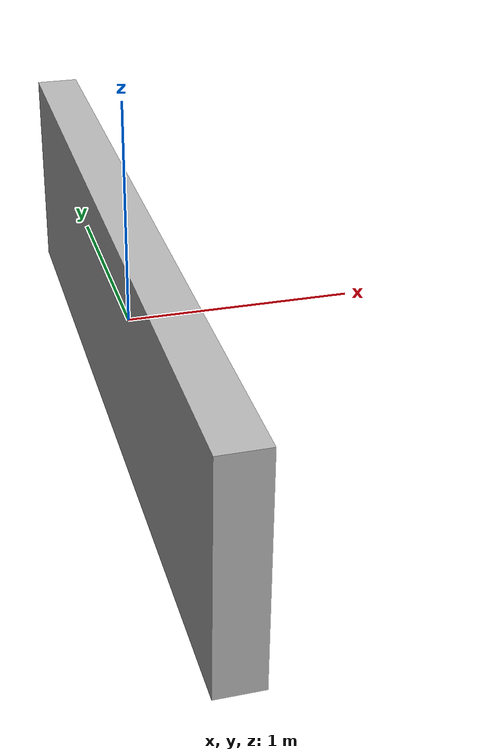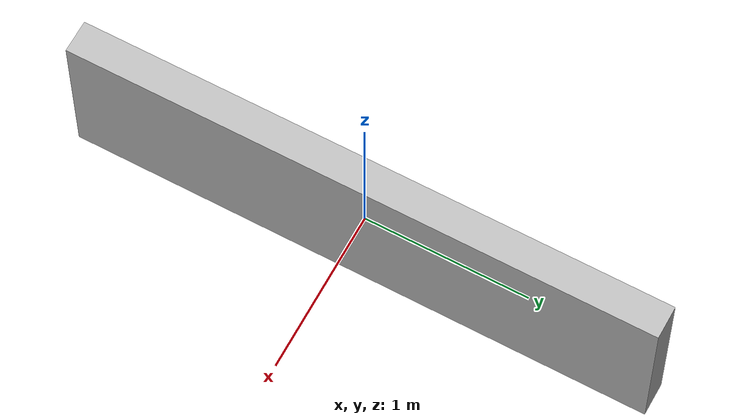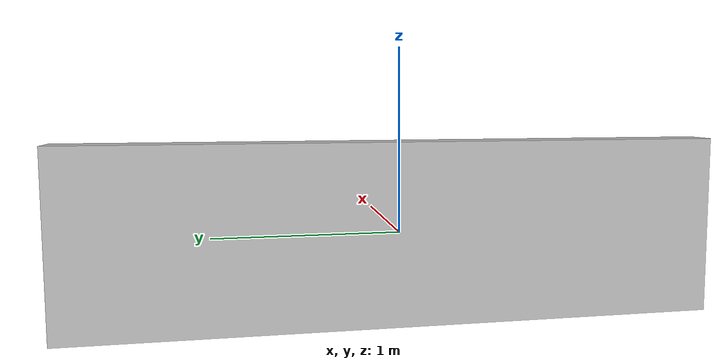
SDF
<?xml version='1.0'?>
<sdf version='1.6'>
  <model name='room_3_wall_right'>
    <static>true</static>
    <link name='link'>
      <collision name='collision'>
        <pose>0 0 0 0 0 0</pose>
        <geometry>
          <box>
            <size>0.2 3.58 1.0</size>
          </box>
        </geometry>
      </collision>
      <visual name='visual'>
        <pose>0 0 0 0 0 0</pose>
        <geometry>
          <box>
            <size>0.2 3.58 1.0</size>
          </box>
        </geometry>
      </visual>
    </link>
  </model>
</sdf>
